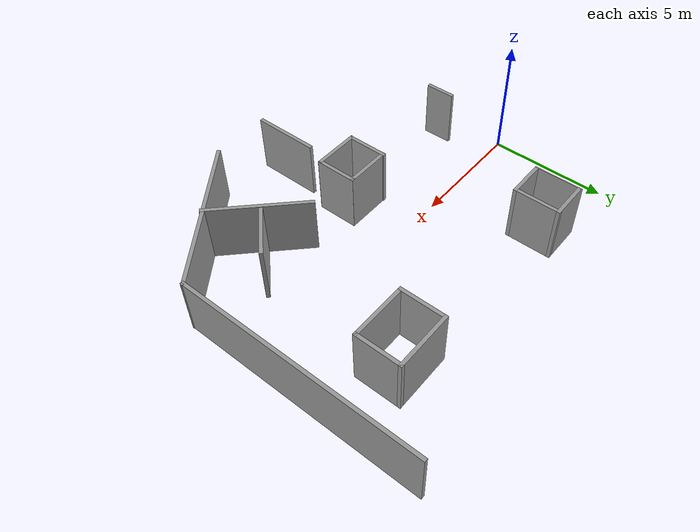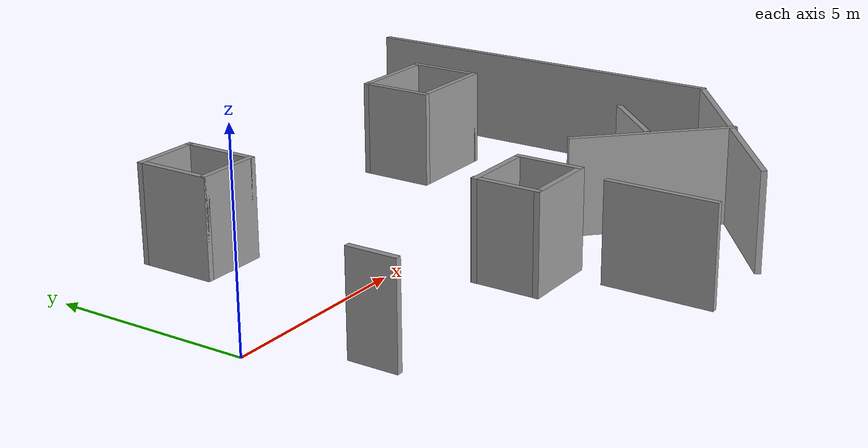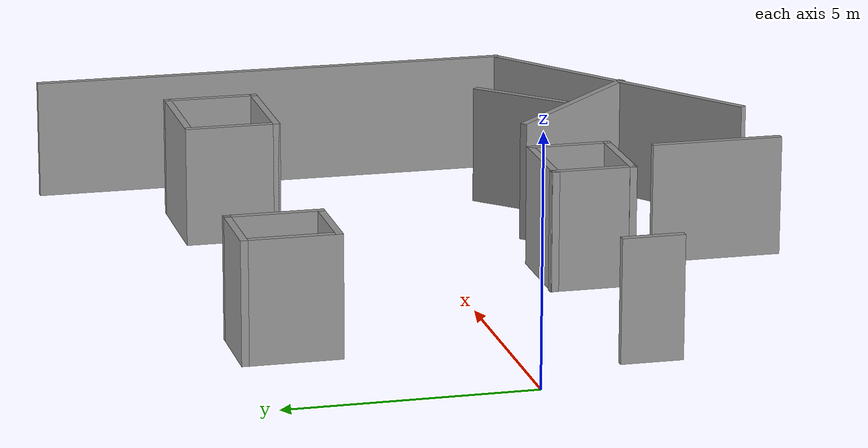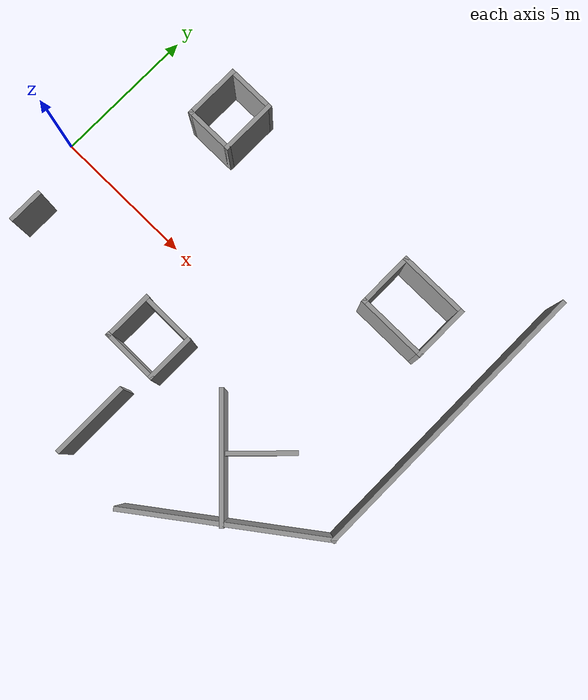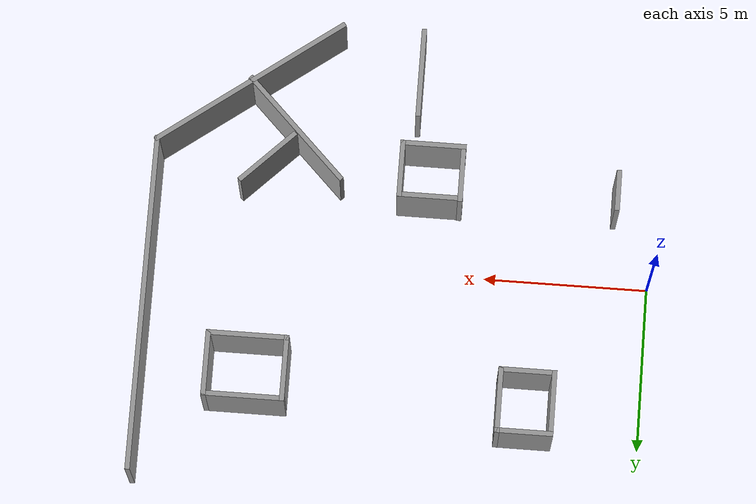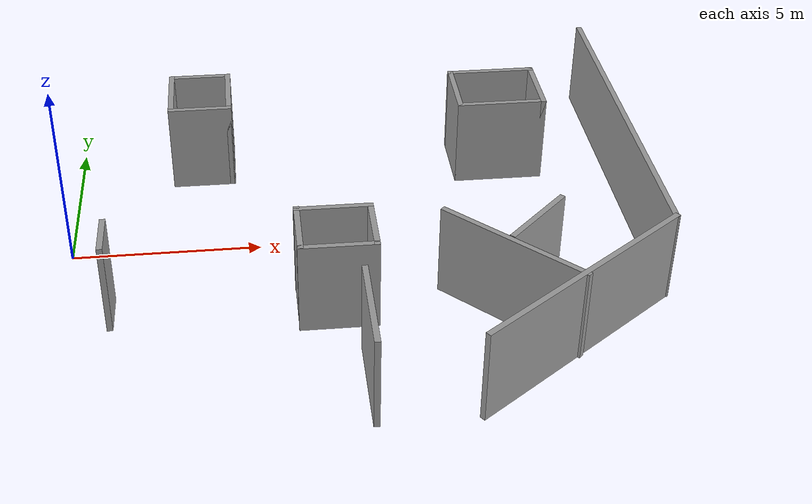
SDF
<sdf version="1.7">
 <model name="environment2">
  <link name="Wall_2">
   <pose>15.1601 1.96964 0 0 0 -1.5708</pose>
   <visual name="Wall_2_Visual">
    <pose>0 0 1.25 0 -0 0</pose>
    <geometry><box><size>10.25 0.15 2.5</size></box></geometry>
    <material>
     <script><uri>file://media/materials/scripts/gazebo.material</uri><name>Gazebo/Grey</name></script>
     <ambient>1 1 1 1</ambient>
     <shader type="pixel"/>
    </material>
    <meta><layer>0</layer></meta>
   </visual>
   <collision name="Wall_2_Collision">
    <pose>0 0 1.25 0 -0 0</pose>
    <geometry><box><size>10.25 0.15 2.5</size></box></geometry>
    <surface>
     <friction>
      <ode><mu>1</mu><mu2>1</mu2><fdir1>0 0 0</fdir1><slip1>0</slip1><slip2>0</slip2></ode>
      <torsional>
       <coefficient>1</coefficient>
       <patch_radius>0</patch_radius>
       <surface_radius>0</surface_radius>
       <use_patch_radius>1</use_patch_radius>
       <ode><slip>0</slip></ode>
      </torsional>
     </friction>
     <bounce><restitution_coefficient>0</restitution_coefficient><threshold>1e+06</threshold></bounce>
     <contact>
      <collide_without_contact>0</collide_without_contact>
      <collide_without_contact_bitmask>1</collide_without_contact_bitmask>
      <collide_bitmask>1</collide_bitmask>
      <ode>
       <soft_cfm>0</soft_cfm>
       <soft_erp>0.2</soft_erp>
       <kp>1e+13</kp>
       <kd>1</kd>
       <max_vel>0.01</max_vel>
       <min_depth>0</min_depth>
      </ode>
      <bullet>
       <split_impulse>1</split_impulse>
       <split_impulse_penetration_threshold>-0.01</split_impulse_penetration_threshold>
       <soft_cfm>0</soft_cfm>
       <soft_erp>0.2</soft_erp>
       <kp>1e+13</kp>
       <kd>1</kd>
      </bullet>
     </contact>
    </surface>
   </collision>
  </link>
  <link name="Wall_27">
   <pose>2.70725 4.17567 0 0 0 -1.5708</pose>
   <visual name="Wall_27_Visual">
    <pose>0 0 1.25 0 -0 0</pose>
    <geometry><box><size>2 0.15 2.5</size></box></geometry>
    <material>
     <script><uri>file://media/materials/scripts/gazebo.material</uri><name>Gazebo/Grey</name></script>
     <ambient>1 1 1 1</ambient>
     <shader type="pixel"/>
    </material>
    <meta><layer>0</layer></meta>
   </visual>
   <collision name="Wall_27_Collision">
    <pose>0 0 1.25 0 -0 0</pose>
    <geometry><box><size>2 0.15 2.5</size></box></geometry>
    <surface>
     <friction>
      <ode><mu>1</mu><mu2>1</mu2><fdir1>0 0 0</fdir1><slip1>0</slip1><slip2>0</slip2></ode>
      <torsional>
       <coefficient>1</coefficient>
       <patch_radius>0</patch_radius>
       <surface_radius>0</surface_radius>
       <use_patch_radius>1</use_patch_radius>
       <ode><slip>0</slip></ode>
      </torsional>
     </friction>
     <bounce><restitution_coefficient>0</restitution_coefficient><threshold>1e+06</threshold></bounce>
     <contact>
      <collide_without_contact>0</collide_without_contact>
      <collide_without_contact_bitmask>1</collide_without_contact_bitmask>
      <collide_bitmask>1</collide_bitmask>
      <ode>
       <soft_cfm>0</soft_cfm>
       <soft_erp>0.2</soft_erp>
       <kp>1e+13</kp>
       <kd>1</kd>
       <max_vel>0.01</max_vel>
       <min_depth>0</min_depth>
      </ode>
      <bullet>
       <split_impulse>1</split_impulse>
       <split_impulse_penetration_threshold>-0.01</split_impulse_penetration_threshold>
       <soft_cfm>0</soft_cfm>
       <soft_erp>0.2</soft_erp>
       <kp>1e+13</kp>
       <kd>1</kd>
      </bullet>
     </contact>
    </surface>
   </collision>
  </link>
  <link name="Wall_28">
   <pose>3.50725 3.25067 0 0 -0 0</pose>
   <visual name="Wall_28_Visual">
    <pose>0 0 1.25 0 -0 0</pose>
    <geometry><box><size>1.75 0.15 2.5</size></box></geometry>
    <material>
     <script><uri>file://media/materials/scripts/gazebo.material</uri><name>Gazebo/Grey</name></script>
     <ambient>1 1 1 1</ambient>
     <shader type="pixel"/>
    </material>
    <meta><layer>0</layer></meta>
   </visual>
   <collision name="Wall_28_Collision">
    <pose>0 0 1.25 0 -0 0</pose>
    <geometry><box><size>1.75 0.15 2.5</size></box></geometry>
    <surface>
     <friction>
      <ode><mu>1</mu><mu2>1</mu2><fdir1>0 0 0</fdir1><slip1>0</slip1><slip2>0</slip2></ode>
      <torsional>
       <coefficient>1</coefficient>
       <patch_radius>0</patch_radius>
       <surface_radius>0</surface_radius>
       <use_patch_radius>1</use_patch_radius>
       <ode><slip>0</slip></ode>
      </torsional>
     </friction>
     <bounce><restitution_coefficient>0</restitution_coefficient><threshold>1e+06</threshold></bounce>
     <contact>
      <collide_without_contact>0</collide_without_contact>
      <collide_without_contact_bitmask>1</collide_without_contact_bitmask>
      <collide_bitmask>1</collide_bitmask>
      <ode>
       <soft_cfm>0</soft_cfm>
       <soft_erp>0.2</soft_erp>
       <kp>1e+13</kp>
       <kd>1</kd>
       <max_vel>0.01</max_vel>
       <min_depth>0</min_depth>
      </ode>
      <bullet>
       <split_impulse>1</split_impulse>
       <split_impulse_penetration_threshold>-0.01</split_impulse_penetration_threshold>
       <soft_cfm>0</soft_cfm>
       <soft_erp>0.2</soft_erp>
       <kp>1e+13</kp>
       <kd>1</kd>
      </bullet>
     </contact>
    </surface>
   </collision>
  </link>
  <link name="Wall_29">
   <pose>4.30724 4.17567 0 0 -0 1.5708</pose>
   <visual name="Wall_29_Visual">
    <pose>0 0 1.25 0 -0 0</pose>
    <geometry><box><size>2 0.15 2.5</size></box></geometry>
    <material>
     <script><uri>file://media/materials/scripts/gazebo.material</uri><name>Gazebo/Grey</name></script>
     <ambient>1 1 1 1</ambient>
     <shader type="pixel"/>
    </material>
    <meta><layer>0</layer></meta>
   </visual>
   <collision name="Wall_29_Collision">
    <pose>0 0 1.25 0 -0 0</pose>
    <geometry><box><size>2 0.15 2.5</size></box></geometry>
    <surface>
     <friction>
      <ode><mu>1</mu><mu2>1</mu2><fdir1>0 0 0</fdir1><slip1>0</slip1><slip2>0</slip2></ode>
      <torsional>
       <coefficient>1</coefficient>
       <patch_radius>0</patch_radius>
       <surface_radius>0</surface_radius>
       <use_patch_radius>1</use_patch_radius>
       <ode><slip>0</slip></ode>
      </torsional>
     </friction>
     <bounce><restitution_coefficient>0</restitution_coefficient><threshold>1e+06</threshold></bounce>
     <contact>
      <collide_without_contact>0</collide_without_contact>
      <collide_without_contact_bitmask>1</collide_without_contact_bitmask>
      <collide_bitmask>1</collide_bitmask>
      <ode>
       <soft_cfm>0</soft_cfm>
       <soft_erp>0.2</soft_erp>
       <kp>1e+13</kp>
       <kd>1</kd>
       <max_vel>0.01</max_vel>
       <min_depth>0</min_depth>
      </ode>
      <bullet>
       <split_impulse>1</split_impulse>
       <split_impulse_penetration_threshold>-0.01</split_impulse_penetration_threshold>
       <soft_cfm>0</soft_cfm>
       <soft_erp>0.2</soft_erp>
       <kp>1e+13</kp>
       <kd>1</kd>
      </bullet>
     </contact>
    </surface>
   </collision>
  </link>
  <link name="Wall_3">
   <pose>12.4921 -5.05445 0 0 0 -2.50458</pose>
   <visual name="Wall_3_Visual">
    <pose>0 0 1.25 0 -0 0</pose>
    <geometry><box><size>6.78786 0.15 2.5</size></box></geometry>
    <material>
     <script><uri>file://media/materials/scripts/gazebo.material</uri><name>Gazebo/Grey</name></script>
     <ambient>1 1 1 1</ambient>
     <shader type="pixel"/>
    </material>
    <meta><layer>0</layer></meta>
   </visual>
   <collision name="Wall_3_Collision">
    <pose>0 0 1.25 0 -0 0</pose>
    <geometry><box><size>6.78786 0.15 2.5</size></box></geometry>
    <surface>
     <friction>
      <ode><mu>1</mu><mu2>1</mu2><fdir1>0 0 0</fdir1><slip1>0</slip1><slip2>0</slip2></ode>
      <torsional>
       <coefficient>1</coefficient>
       <patch_radius>0</patch_radius>
       <surface_radius>0</surface_radius>
       <use_patch_radius>1</use_patch_radius>
       <ode><slip>0</slip></ode>
      </torsional>
     </friction>
     <bounce><restitution_coefficient>0</restitution_coefficient><threshold>1e+06</threshold></bounce>
     <contact>
      <collide_without_contact>0</collide_without_contact>
      <collide_without_contact_bitmask>1</collide_without_contact_bitmask>
      <collide_bitmask>1</collide_bitmask>
      <ode>
       <soft_cfm>0</soft_cfm>
       <soft_erp>0.2</soft_erp>
       <kp>1e+13</kp>
       <kd>1</kd>
       <max_vel>0.01</max_vel>
       <min_depth>0</min_depth>
      </ode>
      <bullet>
       <split_impulse>1</split_impulse>
       <split_impulse_penetration_threshold>-0.01</split_impulse_penetration_threshold>
       <soft_cfm>0</soft_cfm>
       <soft_erp>0.2</soft_erp>
       <kp>1e+13</kp>
       <kd>1</kd>
      </bullet>
     </contact>
    </surface>
   </collision>
  </link>
  <link name="Wall_30">
   <pose>3.50725 5.10067 0 0 -0 3.14159</pose>
   <visual name="Wall_30_Visual">
    <pose>0 0 1.25 0 -0 0</pose>
    <geometry><box><size>1.75 0.15 2.5</size></box></geometry>
    <material>
     <script><uri>file://media/materials/scripts/gazebo.material</uri><name>Gazebo/Grey</name></script>
     <ambient>1 1 1 1</ambient>
     <shader type="pixel"/>
    </material>
    <meta><layer>0</layer></meta>
   </visual>
   <collision name="Wall_30_Collision">
    <pose>0 0 1.25 0 -0 0</pose>
    <geometry><box><size>1.75 0.15 2.5</size></box></geometry>
    <surface>
     <friction>
      <ode><mu>1</mu><mu2>1</mu2><fdir1>0 0 0</fdir1><slip1>0</slip1><slip2>0</slip2></ode>
      <torsional>
       <coefficient>1</coefficient>
       <patch_radius>0</patch_radius>
       <surface_radius>0</surface_radius>
       <use_patch_radius>1</use_patch_radius>
       <ode><slip>0</slip></ode>
      </torsional>
     </friction>
     <bounce><restitution_coefficient>0</restitution_coefficient><threshold>1e+06</threshold></bounce>
     <contact>
      <collide_without_contact>0</collide_without_contact>
      <collide_without_contact_bitmask>1</collide_without_contact_bitmask>
      <collide_bitmask>1</collide_bitmask>
      <ode>
       <soft_cfm>0</soft_cfm>
       <soft_erp>0.2</soft_erp>
       <kp>1e+13</kp>
       <kd>1</kd>
       <max_vel>0.01</max_vel>
       <min_depth>0</min_depth>
      </ode>
      <bullet>
       <split_impulse>1</split_impulse>
       <split_impulse_penetration_threshold>-0.01</split_impulse_penetration_threshold>
       <soft_cfm>0</soft_cfm>
       <soft_erp>0.2</soft_erp>
       <kp>1e+13</kp>
       <kd>1</kd>
      </bullet>
     </contact>
    </surface>
   </collision>
  </link>
  <link name="Wall_32">
   <pose>5.89662 -2.66173 0 0 0 -1.5708</pose>
   <visual name="Wall_32_Visual">
    <pose>0 0 1.25 0 -0 0</pose>
    <geometry><box><size>1.75 0.15 2.5</size></box></geometry>
    <material>
     <script><uri>file://media/materials/scripts/gazebo.material</uri><name>Gazebo/Grey</name></script>
     <ambient>1 1 1 1</ambient>
     <shader type="pixel"/>
    </material>
    <meta><layer>0</layer></meta>
   </visual>
   <collision name="Wall_32_Collision">
    <pose>0 0 1.25 0 -0 0</pose>
    <geometry><box><size>1.75 0.15 2.5</size></box></geometry>
    <surface>
     <friction>
      <ode><mu>1</mu><mu2>1</mu2><fdir1>0 0 0</fdir1><slip1>0</slip1><slip2>0</slip2></ode>
      <torsional>
       <coefficient>1</coefficient>
       <patch_radius>0</patch_radius>
       <surface_radius>0</surface_radius>
       <use_patch_radius>1</use_patch_radius>
       <ode><slip>0</slip></ode>
      </torsional>
     </friction>
     <bounce><restitution_coefficient>0</restitution_coefficient><threshold>1e+06</threshold></bounce>
     <contact>
      <collide_without_contact>0</collide_without_contact>
      <collide_without_contact_bitmask>1</collide_without_contact_bitmask>
      <collide_bitmask>1</collide_bitmask>
      <ode>
       <soft_cfm>0</soft_cfm>
       <soft_erp>0.2</soft_erp>
       <kp>1e+13</kp>
       <kd>1</kd>
       <max_vel>0.01</max_vel>
       <min_depth>0</min_depth>
      </ode>
      <bullet>
       <split_impulse>1</split_impulse>
       <split_impulse_penetration_threshold>-0.01</split_impulse_penetration_threshold>
       <soft_cfm>0</soft_cfm>
       <soft_erp>0.2</soft_erp>
       <kp>1e+13</kp>
       <kd>1</kd>
      </bullet>
     </contact>
    </surface>
   </collision>
  </link>
  <link name="Wall_33">
   <pose>6.81363 -3.49123 0 0 -0 0</pose>
   <visual name="Wall_33_Visual">
    <pose>0 0 1.25 0 -0 0</pose>
    <geometry><box><size>2 0.15 2.5</size></box></geometry>
    <material>
     <script><uri>file://media/materials/scripts/gazebo.material</uri><name>Gazebo/Grey</name></script>
     <ambient>1 1 1 1</ambient>
     <shader type="pixel"/>
    </material>
    <meta><layer>0</layer></meta>
   </visual>
   <collision name="Wall_33_Collision">
    <pose>0 0 1.25 0 -0 0</pose>
    <geometry><box><size>2 0.15 2.5</size></box></geometry>
    <surface>
     <friction>
      <ode><mu>1</mu><mu2>1</mu2><fdir1>0 0 0</fdir1><slip1>0</slip1><slip2>0</slip2></ode>
      <torsional>
       <coefficient>1</coefficient>
       <patch_radius>0</patch_radius>
       <surface_radius>0</surface_radius>
       <use_patch_radius>1</use_patch_radius>
       <ode><slip>0</slip></ode>
      </torsional>
     </friction>
     <bounce><restitution_coefficient>0</restitution_coefficient><threshold>1e+06</threshold></bounce>
     <contact>
      <collide_without_contact>0</collide_without_contact>
      <collide_without_contact_bitmask>1</collide_without_contact_bitmask>
      <collide_bitmask>1</collide_bitmask>
      <ode>
       <soft_cfm>0</soft_cfm>
       <soft_erp>0.2</soft_erp>
       <kp>1e+13</kp>
       <kd>1</kd>
       <max_vel>0.01</max_vel>
       <min_depth>0</min_depth>
      </ode>
      <bullet>
       <split_impulse>1</split_impulse>
       <split_impulse_penetration_threshold>-0.01</split_impulse_penetration_threshold>
       <soft_cfm>0</soft_cfm>
       <soft_erp>0.2</soft_erp>
       <kp>1e+13</kp>
       <kd>1</kd>
      </bullet>
     </contact>
    </surface>
   </collision>
  </link>
  <link name="Wall_34">
   <pose>7.73864 -2.68675 0 0 -0 1.5708</pose>
   <visual name="Wall_34_Visual">
    <pose>0 0 1.25 0 -0 0</pose>
    <geometry><box><size>1.75 0.15 2.5</size></box></geometry>
    <material>
     <script><uri>file://media/materials/scripts/gazebo.material</uri><name>Gazebo/Grey</name></script>
     <ambient>1 1 1 1</ambient>
     <shader type="pixel"/>
    </material>
    <meta><layer>0</layer></meta>
   </visual>
   <collision name="Wall_34_Collision">
    <pose>0 0 1.25 0 -0 0</pose>
    <geometry><box><size>1.75 0.15 2.5</size></box></geometry>
    <surface>
     <friction>
      <ode><mu>1</mu><mu2>1</mu2><fdir1>0 0 0</fdir1><slip1>0</slip1><slip2>0</slip2></ode>
      <torsional>
       <coefficient>1</coefficient>
       <patch_radius>0</patch_radius>
       <surface_radius>0</surface_radius>
       <use_patch_radius>1</use_patch_radius>
       <ode><slip>0</slip></ode>
      </torsional>
     </friction>
     <bounce><restitution_coefficient>0</restitution_coefficient><threshold>1e+06</threshold></bounce>
     <contact>
      <collide_without_contact>0</collide_without_contact>
      <collide_without_contact_bitmask>1</collide_without_contact_bitmask>
      <collide_bitmask>1</collide_bitmask>
      <ode>
       <soft_cfm>0</soft_cfm>
       <soft_erp>0.2</soft_erp>
       <kp>1e+13</kp>
       <kd>1</kd>
       <max_vel>0.01</max_vel>
       <min_depth>0</min_depth>
      </ode>
      <bullet>
       <split_impulse>1</split_impulse>
       <split_impulse_penetration_threshold>-0.01</split_impulse_penetration_threshold>
       <soft_cfm>0</soft_cfm>
       <soft_erp>0.2</soft_erp>
       <kp>1e+13</kp>
       <kd>1</kd>
      </bullet>
     </contact>
    </surface>
   </collision>
  </link>
  <link name="Wall_35">
   <pose>6.81362 -1.88429 0 0 -0 3.14159</pose>
   <visual name="Wall_35_Visual">
    <pose>0 0 1.25 0 -0 0</pose>
    <geometry><box><size>2 0.15 2.5</size></box></geometry>
    <material>
     <script><uri>file://media/materials/scripts/gazebo.material</uri><name>Gazebo/Grey</name></script>
     <ambient>1 1 1 1</ambient>
     <shader type="pixel"/>
    </material>
    <meta><layer>0</layer></meta>
   </visual>
   <collision name="Wall_35_Collision">
    <pose>0 0 1.25 0 -0 0</pose>
    <geometry><box><size>2 0.15 2.5</size></box></geometry>
    <surface>
     <friction>
      <ode><mu>1</mu><mu2>1</mu2><fdir1>0 0 0</fdir1><slip1>0</slip1><slip2>0</slip2></ode>
      <torsional>
       <coefficient>1</coefficient>
       <patch_radius>0</patch_radius>
       <surface_radius>0</surface_radius>
       <use_patch_radius>1</use_patch_radius>
       <ode><slip>0</slip></ode>
      </torsional>
     </friction>
     <bounce><restitution_coefficient>0</restitution_coefficient><threshold>1e+06</threshold></bounce>
     <contact>
      <collide_without_contact>0</collide_without_contact>
      <collide_without_contact_bitmask>1</collide_without_contact_bitmask>
      <collide_bitmask>1</collide_bitmask>
      <ode>
       <soft_cfm>0</soft_cfm>
       <soft_erp>0.2</soft_erp>
       <kp>1e+13</kp>
       <kd>1</kd>
       <max_vel>0.01</max_vel>
       <min_depth>0</min_depth>
      </ode>
      <bullet>
       <split_impulse>1</split_impulse>
       <split_impulse_penetration_threshold>-0.01</split_impulse_penetration_threshold>
       <soft_cfm>0</soft_cfm>
       <soft_erp>0.2</soft_erp>
       <kp>1e+13</kp>
       <kd>1</kd>
      </bullet>
     </contact>
    </surface>
   </collision>
  </link>
  <link name="Wall_59">
   <pose>10.7619 3.70045 0 0 0 -1.5708</pose>
   <visual name="Wall_59_Visual">
    <pose>0 0 1.25 0 -0 0</pose>
    <geometry><box><size>2 0.15 2.5</size></box></geometry>
    <material>
     <script><uri>file://media/materials/scripts/gazebo.material</uri><name>Gazebo/Grey</name></script>
     <ambient>1 1 1 1</ambient>
     <shader type="pixel"/>
    </material>
    <meta><layer>0</layer></meta>
   </visual>
   <collision name="Wall_59_Collision">
    <pose>0 0 1.25 0 -0 0</pose>
    <geometry><box><size>2 0.15 2.5</size></box></geometry>
    <surface>
     <friction>
      <ode><mu>1</mu><mu2>1</mu2><fdir1>0 0 0</fdir1><slip1>0</slip1><slip2>0</slip2></ode>
      <torsional>
       <coefficient>1</coefficient>
       <patch_radius>0</patch_radius>
       <surface_radius>0</surface_radius>
       <use_patch_radius>1</use_patch_radius>
       <ode><slip>0</slip></ode>
      </torsional>
     </friction>
     <bounce><restitution_coefficient>0</restitution_coefficient><threshold>1e+06</threshold></bounce>
     <contact>
      <collide_without_contact>0</collide_without_contact>
      <collide_without_contact_bitmask>1</collide_without_contact_bitmask>
      <collide_bitmask>1</collide_bitmask>
      <ode>
       <soft_cfm>0</soft_cfm>
       <soft_erp>0.2</soft_erp>
       <kp>1e+13</kp>
       <kd>1</kd>
       <max_vel>0.01</max_vel>
       <min_depth>0</min_depth>
      </ode>
      <bullet>
       <split_impulse>1</split_impulse>
       <split_impulse_penetration_threshold>-0.01</split_impulse_penetration_threshold>
       <soft_cfm>0</soft_cfm>
       <soft_erp>0.2</soft_erp>
       <kp>1e+13</kp>
       <kd>1</kd>
      </bullet>
     </contact>
    </surface>
   </collision>
  </link>
  <link name="Wall_60">
   <pose>11.9369 2.77545 0 0 -0 0</pose>
   <visual name="Wall_60_Visual">
    <pose>0 0 1.25 0 -0 0</pose>
    <geometry><box><size>2.5 0.15 2.5</size></box></geometry>
    <material>
     <script><uri>file://media/materials/scripts/gazebo.material</uri><name>Gazebo/Grey</name></script>
     <ambient>1 1 1 1</ambient>
     <shader type="pixel"/>
    </material>
    <meta><layer>0</layer></meta>
   </visual>
   <collision name="Wall_60_Collision">
    <pose>0 0 1.25 0 -0 0</pose>
    <geometry><box><size>2.5 0.15 2.5</size></box></geometry>
    <surface>
     <friction>
      <ode><mu>1</mu><mu2>1</mu2><fdir1>0 0 0</fdir1><slip1>0</slip1><slip2>0</slip2></ode>
      <torsional>
       <coefficient>1</coefficient>
       <patch_radius>0</patch_radius>
       <surface_radius>0</surface_radius>
       <use_patch_radius>1</use_patch_radius>
       <ode><slip>0</slip></ode>
      </torsional>
     </friction>
     <bounce><restitution_coefficient>0</restitution_coefficient><threshold>1e+06</threshold></bounce>
     <contact>
      <collide_without_contact>0</collide_without_contact>
      <collide_without_contact_bitmask>1</collide_without_contact_bitmask>
      <collide_bitmask>1</collide_bitmask>
      <ode>
       <soft_cfm>0</soft_cfm>
       <soft_erp>0.2</soft_erp>
       <kp>1e+13</kp>
       <kd>1</kd>
       <max_vel>0.01</max_vel>
       <min_depth>0</min_depth>
      </ode>
      <bullet>
       <split_impulse>1</split_impulse>
       <split_impulse_penetration_threshold>-0.01</split_impulse_penetration_threshold>
       <soft_cfm>0</soft_cfm>
       <soft_erp>0.2</soft_erp>
       <kp>1e+13</kp>
       <kd>1</kd>
      </bullet>
     </contact>
    </surface>
   </collision>
  </link>
  <link name="Wall_61">
   <pose>13.1119 3.70045 0 0 -0 1.5708</pose>
   <visual name="Wall_61_Visual">
    <pose>0 0 1.25 0 -0 0</pose>
    <geometry><box><size>2 0.15 2.5</size></box></geometry>
    <material>
     <script><uri>file://media/materials/scripts/gazebo.material</uri><name>Gazebo/Grey</name></script>
     <ambient>1 1 1 1</ambient>
     <shader type="pixel"/>
    </material>
    <meta><layer>0</layer></meta>
   </visual>
   <collision name="Wall_61_Collision">
    <pose>0 0 1.25 0 -0 0</pose>
    <geometry><box><size>2 0.15 2.5</size></box></geometry>
    <surface>
     <friction>
      <ode><mu>1</mu><mu2>1</mu2><fdir1>0 0 0</fdir1><slip1>0</slip1><slip2>0</slip2></ode>
      <torsional>
       <coefficient>1</coefficient>
       <patch_radius>0</patch_radius>
       <surface_radius>0</surface_radius>
       <use_patch_radius>1</use_patch_radius>
       <ode><slip>0</slip></ode>
      </torsional>
     </friction>
     <bounce><restitution_coefficient>0</restitution_coefficient><threshold>1e+06</threshold></bounce>
     <contact>
      <collide_without_contact>0</collide_without_contact>
      <collide_without_contact_bitmask>1</collide_without_contact_bitmask>
      <collide_bitmask>1</collide_bitmask>
      <ode>
       <soft_cfm>0</soft_cfm>
       <soft_erp>0.2</soft_erp>
       <kp>1e+13</kp>
       <kd>1</kd>
       <max_vel>0.01</max_vel>
       <min_depth>0</min_depth>
      </ode>
      <bullet>
       <split_impulse>1</split_impulse>
       <split_impulse_penetration_threshold>-0.01</split_impulse_penetration_threshold>
       <soft_cfm>0</soft_cfm>
       <soft_erp>0.2</soft_erp>
       <kp>1e+13</kp>
       <kd>1</kd>
      </bullet>
     </contact>
    </surface>
   </collision>
  </link>
  <link name="Wall_62">
   <pose>11.9369 4.62545 0 0 -0 3.14159</pose>
   <visual name="Wall_62_Visual">
    <pose>0 0 1.25 0 -0 0</pose>
    <geometry><box><size>2.5 0.15 2.5</size></box></geometry>
    <material>
     <script><uri>file://media/materials/scripts/gazebo.material</uri><name>Gazebo/Grey</name></script>
     <ambient>1 1 1 1</ambient>
     <shader type="pixel"/>
    </material>
    <meta><layer>0</layer></meta>
   </visual>
   <collision name="Wall_62_Collision">
    <pose>0 0 1.25 0 -0 0</pose>
    <geometry><box><size>2.5 0.15 2.5</size></box></geometry>
    <surface>
     <friction>
      <ode><mu>1</mu><mu2>1</mu2><fdir1>0 0 0</fdir1><slip1>0</slip1><slip2>0</slip2></ode>
      <torsional>
       <coefficient>1</coefficient>
       <patch_radius>0</patch_radius>
       <surface_radius>0</surface_radius>
       <use_patch_radius>1</use_patch_radius>
       <ode><slip>0</slip></ode>
      </torsional>
     </friction>
     <bounce><restitution_coefficient>0</restitution_coefficient><threshold>1e+06</threshold></bounce>
     <contact>
      <collide_without_contact>0</collide_without_contact>
      <collide_without_contact_bitmask>1</collide_without_contact_bitmask>
      <collide_bitmask>1</collide_bitmask>
      <ode>
       <soft_cfm>0</soft_cfm>
       <soft_erp>0.2</soft_erp>
       <kp>1e+13</kp>
       <kd>1</kd>
       <max_vel>0.01</max_vel>
       <min_depth>0</min_depth>
      </ode>
      <bullet>
       <split_impulse>1</split_impulse>
       <split_impulse_penetration_threshold>-0.01</split_impulse_penetration_threshold>
       <soft_cfm>0</soft_cfm>
       <soft_erp>0.2</soft_erp>
       <kp>1e+13</kp>
       <kd>1</kd>
      </bullet>
     </contact>
    </surface>
   </collision>
  </link>
  <link name="Wall_64">
   <pose>11.0009 -3.70468 0 0 -0 2.35619</pose>
   <visual name="Wall_64_Visual">
    <pose>0 0 1.25 0 -0 0</pose>
    <geometry><box><size>4.25 0.15 2.5</size></box></geometry>
    <material>
     <script><uri>file://media/materials/scripts/gazebo.material</uri><name>Gazebo/Grey</name></script>
     <ambient>1 1 1 1</ambient>
     <shader type="pixel"/>
    </material>
    <meta><layer>0</layer></meta>
   </visual>
   <collision name="Wall_64_Collision">
    <pose>0 0 1.25 0 -0 0</pose>
    <geometry><box><size>4.25 0.15 2.5</size></box></geometry>
    <surface>
     <friction>
      <ode><mu>1</mu><mu2>1</mu2><fdir1>0 0 0</fdir1><slip1>0</slip1><slip2>0</slip2></ode>
      <torsional>
       <coefficient>1</coefficient>
       <patch_radius>0</patch_radius>
       <surface_radius>0</surface_radius>
       <use_patch_radius>1</use_patch_radius>
       <ode><slip>0</slip></ode>
      </torsional>
     </friction>
     <bounce><restitution_coefficient>0</restitution_coefficient><threshold>1e+06</threshold></bounce>
     <contact>
      <collide_without_contact>0</collide_without_contact>
      <collide_without_contact_bitmask>1</collide_without_contact_bitmask>
      <collide_bitmask>1</collide_bitmask>
      <ode>
       <soft_cfm>0</soft_cfm>
       <soft_erp>0.2</soft_erp>
       <kp>1e+13</kp>
       <kd>1</kd>
       <max_vel>0.01</max_vel>
       <min_depth>0</min_depth>
      </ode>
      <bullet>
       <split_impulse>1</split_impulse>
       <split_impulse_penetration_threshold>-0.01</split_impulse_penetration_threshold>
       <soft_cfm>0</soft_cfm>
       <soft_erp>0.2</soft_erp>
       <kp>1e+13</kp>
       <kd>1</kd>
      </bullet>
     </contact>
    </surface>
   </collision>
  </link>
  <link name="Wall_66">
   <pose>11.7858 -2.75838 0 0 -0 0.785398</pose>
   <visual name="Wall_66_Visual">
    <pose>0 0 1.25 0 -0 0</pose>
    <geometry><box><size>2.25 0.15 2.5</size></box></geometry>
    <material>
     <script><uri>file://media/materials/scripts/gazebo.material</uri><name>Gazebo/Grey</name></script>
     <ambient>1 1 1 1</ambient>
     <shader type="pixel"/>
    </material>
    <meta><layer>0</layer></meta>
   </visual>
   <collision name="Wall_66_Collision">
    <pose>0 0 1.25 0 -0 0</pose>
    <geometry><box><size>2.25 0.15 2.5</size></box></geometry>
    <surface>
     <friction>
      <ode><mu>1</mu><mu2>1</mu2><fdir1>0 0 0</fdir1><slip1>0</slip1><slip2>0</slip2></ode>
      <torsional>
       <coefficient>1</coefficient>
       <patch_radius>0</patch_radius>
       <surface_radius>0</surface_radius>
       <use_patch_radius>1</use_patch_radius>
       <ode><slip>0</slip></ode>
      </torsional>
     </friction>
     <bounce><restitution_coefficient>0</restitution_coefficient><threshold>1e+06</threshold></bounce>
     <contact>
      <collide_without_contact>0</collide_without_contact>
      <collide_without_contact_bitmask>1</collide_without_contact_bitmask>
      <collide_bitmask>1</collide_bitmask>
      <ode>
       <soft_cfm>0</soft_cfm>
       <soft_erp>0.2</soft_erp>
       <kp>1e+13</kp>
       <kd>1</kd>
       <max_vel>0.01</max_vel>
       <min_depth>0</min_depth>
      </ode>
      <bullet>
       <split_impulse>1</split_impulse>
       <split_impulse_penetration_threshold>-0.01</split_impulse_penetration_threshold>
       <soft_cfm>0</soft_cfm>
       <soft_erp>0.2</soft_erp>
       <kp>1e+13</kp>
       <kd>1</kd>
      </bullet>
     </contact>
    </surface>
   </collision>
  </link>
  <link name="Wall_69">
   <pose>7.34954 -5.71872 0 0 -0 1.5708</pose>
   <visual name="Wall_69_Visual">
    <pose>0 0 1.25 0 -0 0</pose>
    <geometry><box><size>2.75 0.15 2.5</size></box></geometry>
    <material>
     <script><uri>file://media/materials/scripts/gazebo.material</uri><name>Gazebo/Grey</name></script>
     <ambient>1 1 1 1</ambient>
     <shader type="pixel"/>
    </material>
    <meta><layer>0</layer></meta>
   </visual>
   <collision name="Wall_69_Collision">
    <pose>0 0 1.25 0 -0 0</pose>
    <geometry><box><size>2.75 0.15 2.5</size></box></geometry>
    <surface>
     <friction>
      <ode><mu>1</mu><mu2>1</mu2><fdir1>0 0 0</fdir1><slip1>0</slip1><slip2>0</slip2></ode>
      <torsional>
       <coefficient>1</coefficient>
       <patch_radius>0</patch_radius>
       <surface_radius>0</surface_radius>
       <use_patch_radius>1</use_patch_radius>
       <ode><slip>0</slip></ode>
      </torsional>
     </friction>
     <bounce><restitution_coefficient>0</restitution_coefficient><threshold>1e+06</threshold></bounce>
     <contact>
      <collide_without_contact>0</collide_without_contact>
      <collide_without_contact_bitmask>1</collide_without_contact_bitmask>
      <collide_bitmask>1</collide_bitmask>
      <ode>
       <soft_cfm>0</soft_cfm>
       <soft_erp>0.2</soft_erp>
       <kp>1e+13</kp>
       <kd>1</kd>
       <max_vel>0.01</max_vel>
       <min_depth>0</min_depth>
      </ode>
      <bullet>
       <split_impulse>1</split_impulse>
       <split_impulse_penetration_threshold>-0.01</split_impulse_penetration_threshold>
       <soft_cfm>0</soft_cfm>
       <soft_erp>0.2</soft_erp>
       <kp>1e+13</kp>
       <kd>1</kd>
      </bullet>
     </contact>
    </surface>
   </collision>
  </link>
  <link name="Wall_75">
   <pose>1.15808 -2.49352 0 0 -0 1.5708</pose>
   <visual name="Wall_75_Visual">
    <pose>0 0 1.25 0 -0 0</pose>
    <geometry><box><size>1.25 0.15 2.5</size></box></geometry>
    <material>
     <script><uri>file://media/materials/scripts/gazebo.material</uri><name>Gazebo/Grey</name></script>
     <ambient>1 1 1 1</ambient>
     <shader type="pixel"/>
    </material>
    <meta><layer>0</layer></meta>
   </visual>
   <collision name="Wall_75_Collision">
    <pose>0 0 1.25 0 -0 0</pose>
    <geometry><box><size>1.25 0.15 2.5</size></box></geometry>
    <surface>
     <friction>
      <ode><mu>1</mu><mu2>1</mu2><fdir1>0 0 0</fdir1><slip1>0</slip1><slip2>0</slip2></ode>
      <torsional>
       <coefficient>1</coefficient>
       <patch_radius>0</patch_radius>
       <surface_radius>0</surface_radius>
       <use_patch_radius>1</use_patch_radius>
       <ode><slip>0</slip></ode>
      </torsional>
     </friction>
     <bounce><restitution_coefficient>0</restitution_coefficient><threshold>1e+06</threshold></bounce>
     <contact>
      <collide_without_contact>0</collide_without_contact>
      <collide_without_contact_bitmask>1</collide_without_contact_bitmask>
      <collide_bitmask>1</collide_bitmask>
      <ode>
       <soft_cfm>0</soft_cfm>
       <soft_erp>0.2</soft_erp>
       <kp>1e+13</kp>
       <kd>1</kd>
       <max_vel>0.01</max_vel>
       <min_depth>0</min_depth>
      </ode>
      <bullet>
       <split_impulse>1</split_impulse>
       <split_impulse_penetration_threshold>-0.01</split_impulse_penetration_threshold>
       <soft_cfm>0</soft_cfm>
       <soft_erp>0.2</soft_erp>
       <kp>1e+13</kp>
       <kd>1</kd>
      </bullet>
     </contact>
    </surface>
   </collision>
  </link>
  <static>1</static>
 </model>
</sdf>
